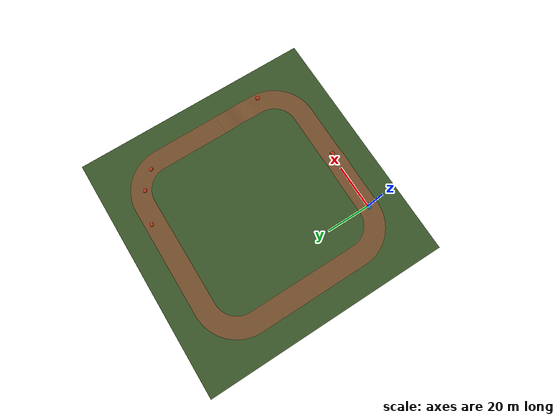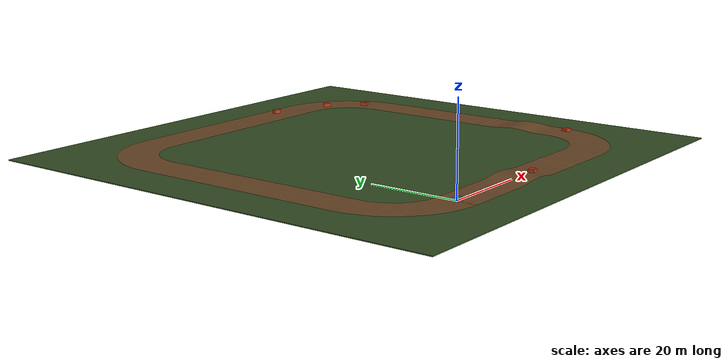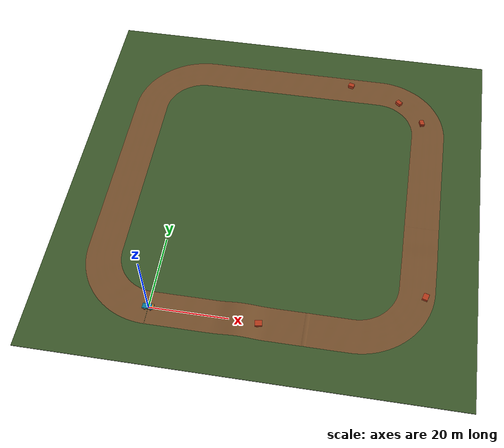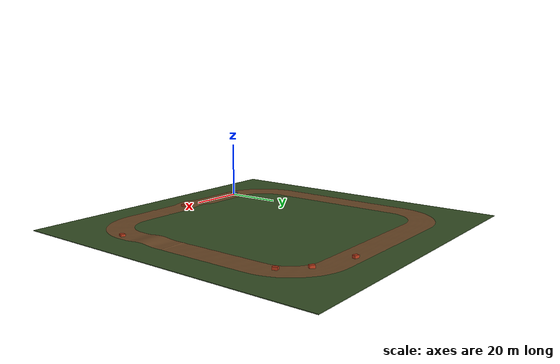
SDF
<?xml version="1.0"?>
<sdf version="1.9">
  <world name="baja_track">
    <physics name="high_rate_dynamics" type="ignored">
      <max_step_size>0.002</max_step_size>
      <real_time_factor>1.0</real_time_factor>
      <real_time_update_rate>500</real_time_update_rate>
    </physics>
    <plugin filename="gz-sim-physics-system" name="gz::sim::systems::Physics"/>
    <plugin filename="gz-sim-user-commands-system" name="gz::sim::systems::UserCommands"/>
    <plugin filename="gz-sim-scene-broadcaster-system" name="gz::sim::systems::SceneBroadcaster"/>
    <plugin filename="gz-sim-sensors-system" name="gz::sim::systems::Sensors">
      <render_engine>ogre2</render_engine>
    </plugin>
    <scene><ambient>0.55 0.55 0.55 1</ambient><background>0.67 0.80 0.90 1</background><shadows>true</shadows></scene>
    <light name="sun" type="directional"><cast_shadows>true</cast_shadows><pose>0 0 20 0 0 0</pose><diffuse>0.9 0.86 0.75 1</diffuse><specular>0.2 0.2 0.2 1</specular><direction>-0.4 0.2 -0.9</direction></light>
    <model name="base_ground"><static>true</static><pose>25.0000 40.0000 -0.2400 0 0 0</pose><link name="ground"><collision name="collision"><geometry><box><size>110.0000 110.0000 0.2</size></box></geometry><surface><friction><ode><mu>1.1</mu><mu2>1.0</mu2></ode></friction></surface></collision><visual name="visual"><geometry><box><size>110.0000 110.0000 0.2</size></box></geometry><material><ambient>0.16 0.25 0.12 1</ambient><diffuse>0.23 0.34 0.16 1</diffuse><pbr><metal><roughness>1.0</roughness><metalness>0.0</metalness></metal></pbr></material></visual></link></model>
    <model name="dirt_road"><static>true</static><link name="road"><collision name="collision"><geometry><mesh><uri>file:///home/pandafixle/Desktop/baja_cloud_sim/runtime/scenario_42/dirt_road.obj</uri></mesh></geometry><surface><friction><ode><mu>1.25</mu><mu2>1.0</mu2></ode></friction><contact><ode><kp>800000</kp><kd>220</kd><max_vel>0.08</max_vel><min_depth>0.0005</min_depth></ode></contact></surface></collision><visual name="visual"><geometry><mesh><uri>file:///home/pandafixle/Desktop/baja_cloud_sim/runtime/scenario_42/dirt_road.obj</uri></mesh></geometry><material><ambient>0.30 0.20 0.11 1</ambient><diffuse>0.46 0.31 0.17 1</diffuse><pbr><metal><roughness>1.0</roughness><metalness>0.0</metalness></metal></pbr></material></visual></link></model>

    <model name="obstacle_0">
      <static>true</static>
      <pose>27.50000 -0.45058 0.52862 0 0 0.16847</pose>
      <link name="body">
        <collision name="collision">
          <geometry><box><size>1.7363 1.4133 0.6859</size></box></geometry>
          <surface><friction><ode><mu>0.9</mu><mu2>0.9</mu2></ode></friction></surface>
        </collision>
        <visual name="visual">
          <geometry><box><size>1.7363 1.4133 0.6859</size></box></geometry>
          <material><ambient>0.42 0.12 0.07 1</ambient><diffuse>0.70 0.22 0.10 1</diffuse><pbr><metal><roughness>0.9</roughness><metalness>0.0</metalness></metal></pbr></material>
        </visual>
      </link>
    </model>

    <model name="obstacle_1">
      <static>true</static>
      <pose>67.09786 13.21314 0.37140 0 0 1.27953</pose>
      <link name="body">
        <collision name="collision">
          <geometry><box><size>1.7816 1.3929 0.6828</size></box></geometry>
          <surface><friction><ode><mu>0.9</mu><mu2>0.9</mu2></ode></friction></surface>
        </collision>
        <visual name="visual">
          <geometry><box><size>1.7816 1.3929 0.6828</size></box></geometry>
          <material><ambient>0.42 0.12 0.07 1</ambient><diffuse>0.70 0.22 0.10 1</diffuse><pbr><metal><roughness>0.9</roughness><metalness>0.0</metalness></metal></pbr></material>
        </visual>
      </link>
    </model>

    <model name="obstacle_2">
      <static>true</static>
      <pose>63.01511 69.93666 0.47773 0 0 1.87700</pose>
      <link name="body">
        <collision name="collision">
          <geometry><box><size>1.6594 1.1947 0.8955</size></box></geometry>
          <surface><friction><ode><mu>0.9</mu><mu2>0.9</mu2></ode></friction></surface>
        </collision>
        <visual name="visual">
          <geometry><box><size>1.6594 1.1947 0.8955</size></box></geometry>
          <material><ambient>0.42 0.12 0.07 1</ambient><diffuse>0.70 0.22 0.10 1</diffuse><pbr><metal><roughness>0.9</roughness><metalness>0.0</metalness></metal></pbr></material>
        </visual>
      </link>
    </model>

    <model name="obstacle_3">
      <static>true</static>
      <pose>56.01473 76.69776 0.48779 0 0 2.42843</pose>
      <link name="body">
        <collision name="collision">
          <geometry><box><size>1.6381 1.1945 0.9156</size></box></geometry>
          <surface><friction><ode><mu>0.9</mu><mu2>0.9</mu2></ode></friction></surface>
        </collision>
        <visual name="visual">
          <geometry><box><size>1.6381 1.1945 0.9156</size></box></geometry>
          <material><ambient>0.42 0.12 0.07 1</ambient><diffuse>0.70 0.22 0.10 1</diffuse><pbr><metal><roughness>0.9</roughness><metalness>0.0</metalness></metal></pbr></material>
        </visual>
      </link>
    </model>

    <model name="obstacle_4">
      <static>true</static>
      <pose>41.62389 81.42343 0.48861 0 0 2.86314</pose>
      <link name="body">
        <collision name="collision">
          <geometry><box><size>1.6039 1.2513 0.9172</size></box></geometry>
          <surface><friction><ode><mu>0.9</mu><mu2>0.9</mu2></ode></friction></surface>
        </collision>
        <visual name="visual">
          <geometry><box><size>1.6039 1.2513 0.9172</size></box></geometry>
          <material><ambient>0.42 0.12 0.07 1</ambient><diffuse>0.70 0.22 0.10 1</diffuse><pbr><metal><roughness>0.9</roughness><metalness>0.0</metalness></metal></pbr></material>
        </visual>
      </link>
    </model>
    <include><uri>file:///home/pandafixle/Desktop/baja_cloud_sim/install/baja_cloud_sim/share/baja_cloud_sim/models/baja_vehicle</uri><name>baja_vehicle</name><pose>0.00000 0.00000 0.52000 0 0 0.00000</pose></include>
  </world>
</sdf>

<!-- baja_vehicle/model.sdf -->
<sdf version="1.9">
  <model name="baja_vehicle">
    <self_collide>false</self_collide>
    <allow_auto_disable>false</allow_auto_disable>
    <link name="base_link">
      <pose>0 0 0 0 0 0</pose>
      <inertial>
        <mass>210.0</mass>
        <pose>-0.08 0 0 0 0 0</pose>
        <inertia>
          <ixx>44.84</ixx>
          <iyy>127.58</iyy>
          <izz>149.66</izz>
          <ixy>0</ixy>
          <ixz>0</ixz>
          <iyz>0</iyz>
        </inertia>
      </inertial>
      <collision name="chassis_collision">
        <geometry>
          <box>
            <size>2.80 1.34 0.34</size>
          </box>
        </geometry>
        <surface>
          <contact>
            <ode>
              <kp>800000</kp>
              <kd>200</kd>
            </ode>
          </contact>
        </surface>
      </collision>
      <visual name="chassis_visual">
        <geometry>
          <box>
            <size>2.80 1.34 0.34</size>
          </box>
        </geometry>
        <material>
          <ambient>0.02 0.20 0.28 1</ambient>
          <diffuse>0.04 0.48 0.62 1</diffuse>
          <pbr><metal><roughness>0.42</roughness><metalness>0.18</metalness></metal></pbr>
        </material>
      </visual>
      <visual name="nose_visual">
        <pose>1.22 0 0.15 0 0 0</pose>
        <geometry>
          <box>
            <size>0.36 1.18 0.22</size>
          </box>
        </geometry>
        <material>
          <ambient>0.95 0.42 0.06 1</ambient>
          <diffuse>1.0 0.58 0.08 1</diffuse>
        </material>
      </visual>
      <sensor name="recording_camera" type="camera">
        <pose>-5.0 0 3.0 0 0.48 0</pose>
        <topic>/simulation/recording_camera/image</topic>
        <always_on>true</always_on>
        <update_rate>30</update_rate>
        <visualize>false</visualize>
        <camera>
          <horizontal_fov>1.25</horizontal_fov>
          <image>
            <width>1280</width>
            <height>720</height>
            <format>R8G8B8</format>
          </image>
          <clip>
            <near>0.15</near>
            <far>180.0</far>
          </clip>
        </camera>
      </sensor>
    </link>
    <link name="rear_left_wheel">
      <pose>-0.715 0.745 -0.178 0 0 0</pose>
      <inertial>
        <mass>8.0</mass>
        <inertia>
          <ixx>0.183</ixx>
          <iyy>0.341</iyy>
          <izz>0.183</izz>
          <ixy>0</ixy>
          <ixz>0</ixz>
          <iyz>0</iyz>
        </inertia>
      </inertial>
      <collision name="tire">
        <pose>0 0 0 1.570796 0 0</pose>
        <geometry>
          <cylinder>
            <radius>0.279</radius>
            <length>0.18</length>
          </cylinder>
        </geometry>
        <surface>
          <friction>
            <ode>
              <mu>1.35</mu>
              <mu2>1.05</mu2>
              <fdir1>1 0 0</fdir1>
            </ode>
          </friction>
          <contact>
            <ode>
              <kp>700000</kp>
              <kd>160</kd>
              <max_vel>0.1</max_vel>
              <min_depth>0.001</min_depth>
            </ode>
          </contact>
        </surface>
      </collision>
      <visual name="tire_visual">
        <pose>0 0 0 1.570796 0 0</pose>
        <geometry>
          <cylinder>
            <radius>0.279</radius>
            <length>0.18</length>
          </cylinder>
        </geometry>
        <material>
          <ambient>0.025 0.025 0.025 1</ambient>
          <diffuse>0.045 0.045 0.045 1</diffuse>
          <pbr><metal><roughness>0.95</roughness><metalness>0.0</metalness></metal></pbr>
        </material>
      </visual>
    </link>
    <link name="rear_right_wheel">
      <pose>-0.715 -0.745 -0.178 0 0 0</pose>
      <inertial>
        <mass>8.0</mass>
        <inertia>
          <ixx>0.183</ixx>
          <iyy>0.341</iyy>
          <izz>0.183</izz>
          <ixy>0</ixy>
          <ixz>0</ixz>
          <iyz>0</iyz>
        </inertia>
      </inertial>
      <collision name="tire">
        <pose>0 0 0 1.570796 0 0</pose>
        <geometry>
          <cylinder>
            <radius>0.279</radius>
            <length>0.18</length>
          </cylinder>
        </geometry>
        <surface>
          <friction>
            <ode>
              <mu>1.35</mu>
              <mu2>1.05</mu2>
              <fdir1>1 0 0</fdir1>
            </ode>
          </friction>
          <contact>
            <ode>
              <kp>700000</kp>
              <kd>160</kd>
              <max_vel>0.1</max_vel>
              <min_depth>0.001</min_depth>
            </ode>
          </contact>
        </surface>
      </collision>
      <visual name="tire_visual">
        <pose>0 0 0 1.570796 0 0</pose>
        <geometry>
          <cylinder>
            <radius>0.279</radius>
            <length>0.18</length>
          </cylinder>
        </geometry>
        <material>
          <ambient>0.025 0.025 0.025 1</ambient>
          <diffuse>0.045 0.045 0.045 1</diffuse>
          <pbr><metal><roughness>0.95</roughness><metalness>0.0</metalness></metal></pbr>
        </material>
      </visual>
    </link>
    <link name="front_left_steering">
      <pose>0.715 0.655 -0.178 0 0 0</pose>
      <inertial>
        <mass>2.0</mass>
        <inertia>
          <ixx>0.01</ixx>
          <iyy>0.01</iyy>
          <izz>0.01</izz>
          <ixy>0</ixy>
          <ixz>0</ixz>
          <iyz>0</iyz>
        </inertia>
      </inertial>
    </link>
    <link name="front_right_steering">
      <pose>0.715 -0.655 -0.178 0 0 0</pose>
      <inertial>
        <mass>2.0</mass>
        <inertia>
          <ixx>0.01</ixx>
          <iyy>0.01</iyy>
          <izz>0.01</izz>
          <ixy>0</ixy>
          <ixz>0</ixz>
          <iyz>0</iyz>
        </inertia>
      </inertial>
    </link>
    <link name="front_left_wheel">
      <pose>0.715 0.745 -0.178 0 0 0</pose>
      <inertial>
        <mass>8.0</mass>
        <inertia>
          <ixx>0.183</ixx>
          <iyy>0.341</iyy>
          <izz>0.183</izz>
          <ixy>0</ixy>
          <ixz>0</ixz>
          <iyz>0</iyz>
        </inertia>
      </inertial>
      <collision name="tire">
        <pose>0 0 0 1.570796 0 0</pose>
        <geometry>
          <cylinder>
            <radius>0.279</radius>
            <length>0.18</length>
          </cylinder>
        </geometry>
        <surface>
          <friction>
            <ode>
              <mu>1.30</mu>
              <mu2>1.00</mu2>
              <fdir1>1 0 0</fdir1>
            </ode>
          </friction>
          <contact>
            <ode>
              <kp>700000</kp>
              <kd>160</kd>
              <max_vel>0.1</max_vel>
              <min_depth>0.001</min_depth>
            </ode>
          </contact>
        </surface>
      </collision>
      <visual name="tire_visual">
        <pose>0 0 0 1.570796 0 0</pose>
        <geometry>
          <cylinder>
            <radius>0.279</radius>
            <length>0.18</length>
          </cylinder>
        </geometry>
        <material>
          <ambient>0.025 0.025 0.025 1</ambient>
          <diffuse>0.045 0.045 0.045 1</diffuse>
          <pbr><metal><roughness>0.95</roughness><metalness>0.0</metalness></metal></pbr>
        </material>
      </visual>
    </link>
    <link name="front_right_wheel">
      <pose>0.715 -0.745 -0.178 0 0 0</pose>
      <inertial>
        <mass>8.0</mass>
        <inertia>
          <ixx>0.183</ixx>
          <iyy>0.341</iyy>
          <izz>0.183</izz>
          <ixy>0</ixy>
          <ixz>0</ixz>
          <iyz>0</iyz>
        </inertia>
      </inertial>
      <collision name="tire">
        <pose>0 0 0 1.570796 0 0</pose>
        <geometry>
          <cylinder>
            <radius>0.279</radius>
            <length>0.18</length>
          </cylinder>
        </geometry>
        <surface>
          <friction>
            <ode>
              <mu>1.30</mu>
              <mu2>1.00</mu2>
              <fdir1>1 0 0</fdir1>
            </ode>
          </friction>
          <contact>
            <ode>
              <kp>700000</kp>
              <kd>160</kd>
              <max_vel>0.1</max_vel>
              <min_depth>0.001</min_depth>
            </ode>
          </contact>
        </surface>
      </collision>
      <visual name="tire_visual">
        <pose>0 0 0 1.570796 0 0</pose>
        <geometry>
          <cylinder>
            <radius>0.279</radius>
            <length>0.18</length>
          </cylinder>
        </geometry>
        <material>
          <ambient>0.025 0.025 0.025 1</ambient>
          <diffuse>0.045 0.045 0.045 1</diffuse>
          <pbr><metal><roughness>0.95</roughness><metalness>0.0</metalness></metal></pbr>
        </material>
      </visual>
    </link>
    <joint name="rear_left_wheel_joint" type="revolute">
      <parent>base_link</parent>
      <child>rear_left_wheel</child>
      <axis>
        <xyz>0 1 0</xyz>
        <dynamics>
          <damping>0.12</damping>
          <friction>0.04</friction>
        </dynamics>
      </axis>
    </joint>
    <joint name="rear_right_wheel_joint" type="revolute">
      <parent>base_link</parent>
      <child>rear_right_wheel</child>
      <axis>
        <xyz>0 1 0</xyz>
        <dynamics>
          <damping>0.12</damping>
          <friction>0.04</friction>
        </dynamics>
      </axis>
    </joint>
    <joint name="front_left_steering_joint" type="revolute">
      <parent>base_link</parent>
      <child>front_left_steering</child>
      <axis>
        <xyz>0 0 1</xyz>
        <limit>
          <lower>-0.70</lower>
          <upper>0.70</upper>
          <effort>180</effort>
          <velocity>2.5</velocity>
        </limit>
        <dynamics>
          <damping>7.0</damping>
          <friction>0.6</friction>
        </dynamics>
      </axis>
    </joint>
    <joint name="front_right_steering_joint" type="revolute">
      <parent>base_link</parent>
      <child>front_right_steering</child>
      <axis>
        <xyz>0 0 1</xyz>
        <limit>
          <lower>-0.70</lower>
          <upper>0.70</upper>
          <effort>180</effort>
          <velocity>2.5</velocity>
        </limit>
        <dynamics>
          <damping>7.0</damping>
          <friction>0.6</friction>
        </dynamics>
      </axis>
    </joint>
    <joint name="front_left_wheel_joint" type="revolute">
      <parent>front_left_steering</parent>
      <child>front_left_wheel</child>
      <axis>
        <xyz>0 1 0</xyz>
        <dynamics>
          <damping>0.08</damping>
          <friction>0.03</friction>
        </dynamics>
      </axis>
    </joint>
    <joint name="front_right_wheel_joint" type="revolute">
      <parent>front_right_steering</parent>
      <child>front_right_wheel</child>
      <axis>
        <xyz>0 1 0</xyz>
        <dynamics>
          <damping>0.08</damping>
          <friction>0.03</friction>
        </dynamics>
      </axis>
    </joint>
    <plugin filename="gz-sim-ackermann-steering-system" name="gz::sim::systems::AckermannSteering">
      <left_joint>rear_left_wheel_joint</left_joint>
      <right_joint>rear_right_wheel_joint</right_joint>
      <left_steering_joint>front_left_steering_joint</left_steering_joint>
      <right_steering_joint>front_right_steering_joint</right_steering_joint>
      <wheel_separation>1.49</wheel_separation>
      <kingpin_width>1.31</kingpin_width>
      <wheel_base>1.43</wheel_base>
      <wheel_radius>0.279</wheel_radius>
      <steering_limit>0.45379</steering_limit>
      <steer_p_gain>18.0</steer_p_gain>
      <min_velocity>-1.0</min_velocity>
      <max_velocity>5.0</max_velocity>
      <min_acceleration>-50.0</min_acceleration>
      <max_acceleration>50.0</max_acceleration>
      <min_jerk>-500.0</min_jerk>
      <max_jerk>500.0</max_jerk>
      <topic>/model/baja_vehicle/cmd_vel</topic>
      <odom_topic>/model/baja_vehicle/wheel_odometry</odom_topic>
      <tf_topic>/model/baja_vehicle/wheel_tf</tf_topic>
      <frame_id>map</frame_id>
      <child_frame_id>base_link</child_frame_id>
      <odom_publish_frequency>50</odom_publish_frequency>
    </plugin>
    <plugin filename="gz-sim-odometry-publisher-system" name="gz::sim::systems::OdometryPublisher">
      <odom_frame>map</odom_frame>
      <robot_base_frame>base_link</robot_base_frame>
      <odom_publish_frequency>50</odom_publish_frequency>
      <odom_topic>/model/baja_vehicle/ground_truth_odometry</odom_topic>
      <odom_covariance_topic>/model/baja_vehicle/ground_truth_odometry_with_covariance</odom_covariance_topic>
      <tf_topic>/model/baja_vehicle/ground_truth_tf</tf_topic>
      <dimensions>3</dimensions>
      <gaussian_noise>0.0</gaussian_noise>
    </plugin>
    <plugin filename="gz-sim-joint-state-publisher-system" name="gz::sim::systems::JointStatePublisher">
      <topic>/model/baja_vehicle/joint_state</topic>
    </plugin>
  </model>
</sdf>
